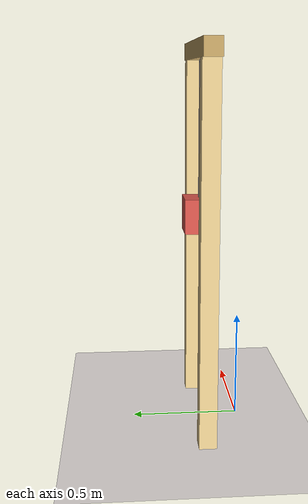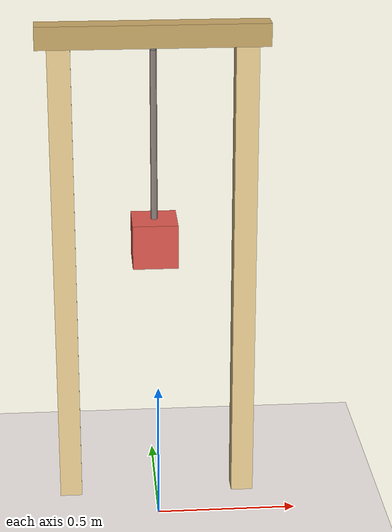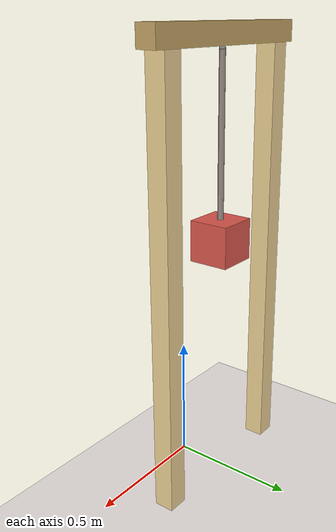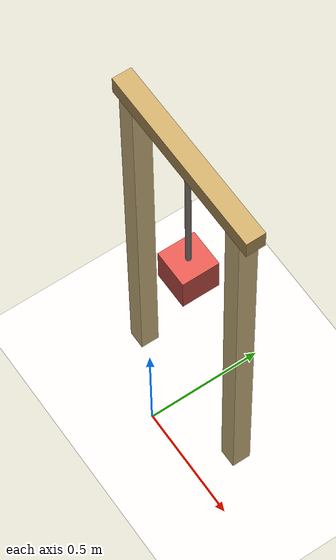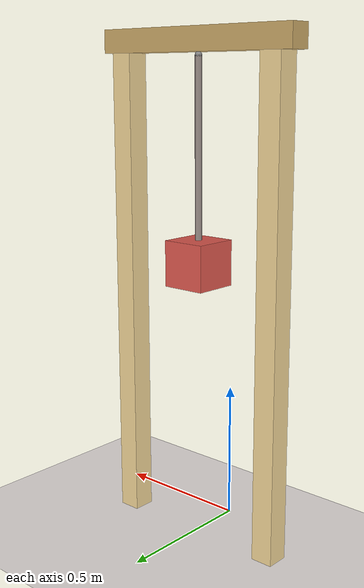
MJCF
<mujoco model="spring_mass">
  <compiler angle="radian" coordinate="local" autolimits="true"/>
  <option timestep="0.001" gravity="0 0 -9.81" integrator="implicitfast"/>

  <visual>
    <headlight diffuse="0 0 0" ambient="0.50 0.48 0.55" specular="0 0 0"/>
    <rgba haze="0.94 0.91 0.90 1"/>
    <global azimuth="120" elevation="-15" offwidth="1920" offheight="1080" fovy="38"/>
    <quality shadowsize="8192" offsamples="8"/>
    <map shadowclip="6" shadowscale="0.7"/>
  </visual>

  <asset>
    <texture type="skybox" builtin="flat"
             rgb1="0.74 0.68 0.86" rgb2="0.74 0.68 0.86"
             width="512" height="512" mark="none" markrgb="0 0 0"/>

    <material name="floor_mat" rgba="0.94 0.91 0.90 1" specular="0" shininess="0"/>
    <material name="wood" rgba="0.93 0.82 0.58 1" specular="0.1" shininess="0.1"/>
    <material name="wood_dark" rgba="0.78 0.65 0.40 1" specular="0.1" shininess="0.1"/>
    <material name="mass_red" rgba="0.86 0.34 0.30 1" specular="0.35" shininess="0.4"/>
    <material name="spring_mat" rgba="0.55 0.50 0.48 1" specular="0.6" shininess="0.6"/>
  </asset>

  <worldbody>
    <light pos="0 0 12" dir="-0.30 0.55 -1" directional="true" castshadow="true"
           diffuse="0.85 0.82 0.78" specular="0.15 0.15 0.15"/>
    <light pos="0 0 8" dir="0.40 -0.30 -1" directional="true" castshadow="false"
           diffuse="0.28 0.28 0.34" specular="0 0 0"/>

    <geom name="floor" type="plane" size="40 40 0.1" material="floor_mat"/>

    <!-- Wooden stand: 2 vertical posts + a top crossbeam -->
    <geom type="box" size="0.04 0.04 0.85" pos="-0.32 0.18 0.85" material="wood"/>
    <geom type="box" size="0.04 0.04 0.85" pos=" 0.32 0.18 0.85" material="wood"/>
    <geom type="box" size="0.40 0.04 0.04" pos="0 0.18 1.74" material="wood_dark"/>

    <!-- Anchor "block" at the bottom of the crossbeam; the spring attaches here -->
    <site name="anchor" pos="0 0.18 1.69" size="0.012"/>

    <!-- The hanging mass.  Slide joint along z; positive z is up.
         At qpos=0 the mass center is at body origin (0, 0.18, 1.00).
         Gravity will pull it down; spring restores. -->
    <body name="mass" pos="0 0.18 1.00">
      <joint name="spring_slide" type="slide" axis="0 0 1"
             stiffness="30" damping="0.25" range="-0.6 0.6"
             springref="0"/>
      <site name="hook" pos="0 0 0.08" size="0.010"/>
      <geom type="box" size="0.08 0.08 0.08" mass="0.4"
            material="mass_red"/>
    </body>

    <!-- Camera: front-facing, looking slightly up to capture the full
         spring + mass + crossbeam stack. -->
    <camera name="cam" pos="0.5 -2.0 1.05" fovy="38"
            xyaxes="0.97 0.24 0   -0.060 0.245 0.968"/>
  </worldbody>

  <!-- Spring rendered as a spatial tendon between anchor (world) and hook (mass). -->
  <tendon>
    <spatial name="spring_vis" width="0.012" rgba="0.55 0.50 0.48 1"
             limited="false">
      <site site="anchor"/>
      <site site="hook"/>
    </spatial>
  </tendon>
</mujoco>
